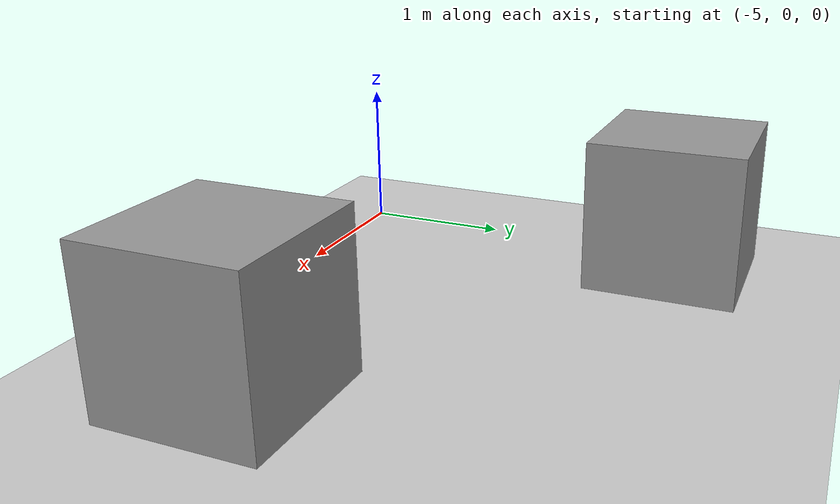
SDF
<sdf version="1.6">
 <world name="default">
  <model name="ground_plane">
   <static>1</static>
   <link name="link">
    <collision name="collision">
     <geometry><plane><normal>0 0 1</normal><size>100 100</size></plane></geometry>
     <surface>
      <contact><collide_bitmask>65535</collide_bitmask></contact>
      <friction><ode><mu>100</mu><mu2>50</mu2></ode></friction>
     </surface>
    </collision>
    <visual name="visual">
     <cast_shadows>0</cast_shadows>
     <geometry><plane><normal>0 0 1</normal><size>100 100</size></plane></geometry>
     <material>
      <script><uri>file://media/materials/scripts/gazebo.material</uri><name>Gazebo/Grey</name></script>
     </material>
    </visual>
   </link>
  </model>
  <model name="unit_box">
   <pose>-4.68452 2.43151 0.499995 -1e-05 -0 -0</pose>
   <link name="link">
    <inertial>
     <mass>1</mass>
     <inertia>
      <ixx>0.166667</ixx>
      <ixy>0</ixy>
      <ixz>0</ixz>
      <iyy>0.166667</iyy>
      <iyz>0</iyz>
      <izz>0.166667</izz>
     </inertia>
    </inertial>
    <collision name="collision"><geometry><box><size>1 1 1</size></box></geometry></collision>
    <visual name="visual">
     <geometry><box><size>1 1 1</size></box></geometry>
     <material>
      <script><name>Gazebo/Grey</name><uri>file://media/materials/scripts/gazebo.material</uri></script>
     </material>
    </visual>
   </link>
  </model>
  <model name="unit_box_3">
   <pose>-2.12954 0.635946 0.5 0 -0 0</pose>
   <link name="link">
    <inertial>
     <mass>1</mass>
     <inertia>
      <ixx>0.166667</ixx>
      <ixy>0</ixy>
      <ixz>0</ixz>
      <iyy>0.166667</iyy>
      <iyz>0</iyz>
      <izz>0.166667</izz>
     </inertia>
    </inertial>
    <collision name="collision"><geometry><box><size>1 1 1</size></box></geometry></collision>
    <visual name="visual">
     <geometry><box><size>1 1 1</size></box></geometry>
     <material>
      <script><name>Gazebo/Grey</name><uri>file://media/materials/scripts/gazebo.material</uri></script>
     </material>
    </visual>
   </link>
  </model>
 </world>
</sdf>
